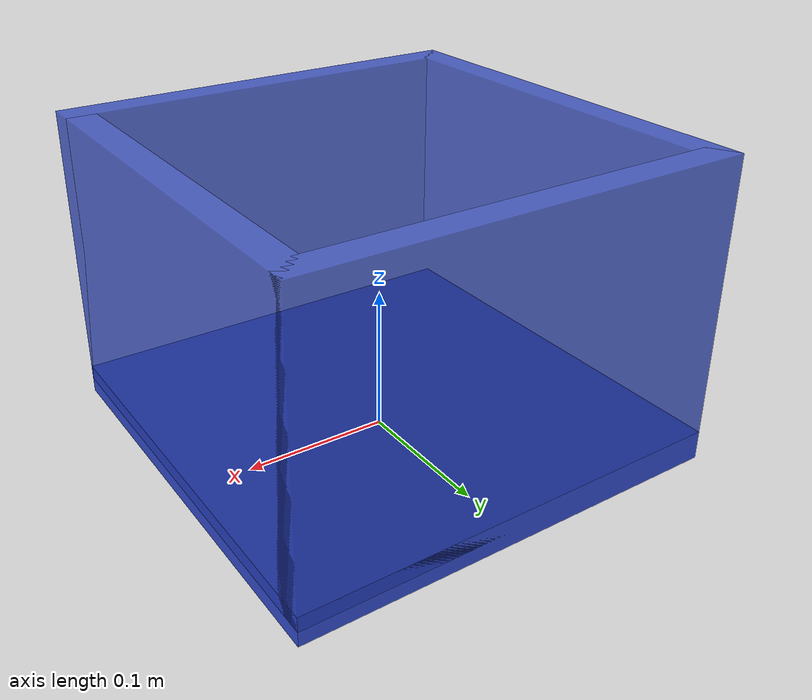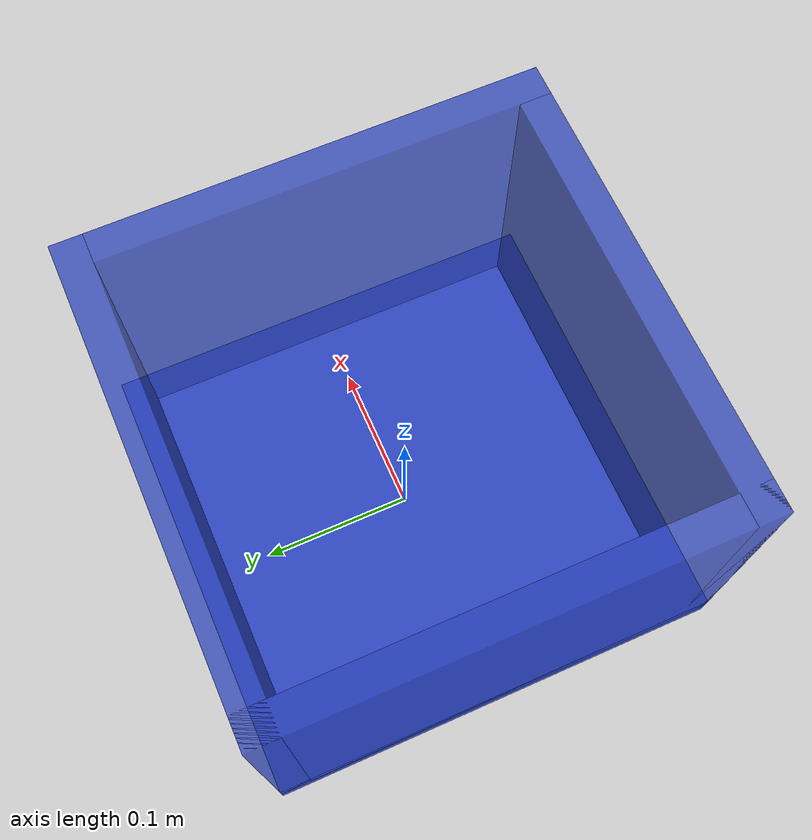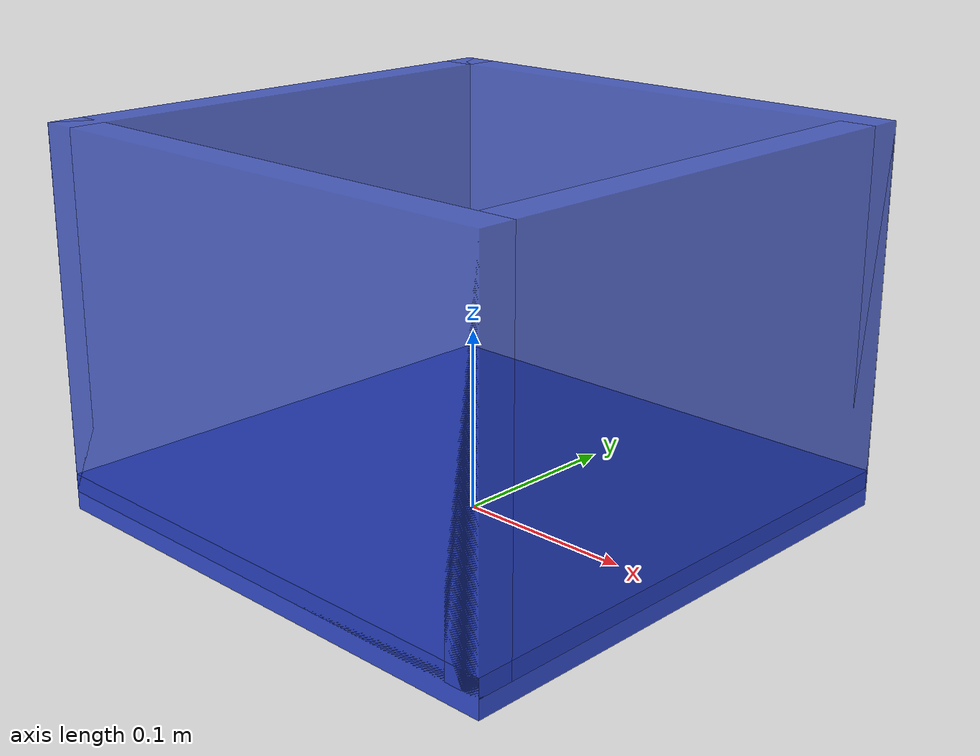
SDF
<?xml version="1.0"?>
<sdf version="1.7">
  <model name="bin_blue">
    <pose>0 0 0 0 0 0</pose>
    <link name="bin_link">
      <inertial>
        <mass>5</mass>
        <inertia>
          <ixx>0.1</ixx>
          <ixy>0.0</ixy>
          <ixz>0.0</ixz>
          <iyy>0.1</iyy>
          <iyz>0.0</iyz>
          <izz>0.1</izz>
        </inertia>
      </inertial>
      <!-- Bottom of bin -->
      <collision name="bottom_collision">
        <pose>0 0 0.01 0 0 0</pose>
        <geometry>
          <box>
            <size>0.3 0.3 0.02</size>
          </box>
        </geometry>
      </collision>
      <visual name="bottom_visual">
        <pose>0 0 0.01 0 0 0</pose>
        <geometry>
          <box>
            <size>0.3 0.3 0.02</size>
          </box>
        </geometry>
        <material>
          <diffuse>0.2 0.3 0.8 1.0</diffuse>
        </material>
      </visual>
      <!-- Front wall -->
      <collision name="front_collision">
        <pose>0 -0.14 0.11 0 0 0</pose>
        <geometry>
          <box>
            <size>0.3 0.02 0.20</size>
          </box>
        </geometry>
      </collision>
      <visual name="front_visual">
        <pose>0 -0.14 0.11 0 0 0</pose>
        <geometry>
          <box>
            <size>0.3 0.02 0.20</size>
          </box>
        </geometry>
        <material>
          <diffuse>0.2 0.3 0.8 0.8</diffuse>
        </material>
      </visual>
      <!-- Back wall -->
      <collision name="back_collision">
        <pose>0 0.14 0.11 0 0 0</pose>
        <geometry>
          <box>
            <size>0.3 0.02 0.20</size>
          </box>
        </geometry>
      </collision>
      <visual name="back_visual">
        <pose>0 0.14 0.11 0 0 0</pose>
        <geometry>
          <box>
            <size>0.3 0.02 0.20</size>
          </box>
        </geometry>
        <material>
          <diffuse>0.2 0.3 0.8 0.8</diffuse>
        </material>
      </visual>
      <!-- Left wall -->
      <collision name="left_collision">
        <pose>-0.14 0 0.11 0 0 0</pose>
        <geometry>
          <box>
            <size>0.02 0.3 0.20</size>
          </box>
        </geometry>
      </collision>
      <visual name="left_visual">
        <pose>-0.14 0 0.11 0 0 0</pose>
        <geometry>
          <box>
            <size>0.02 0.3 0.20</size>
          </box>
        </geometry>
        <material>
          <diffuse>0.2 0.3 0.8 0.8</diffuse>
        </material>
      </visual>
      <!-- Right wall -->
      <collision name="right_collision">
        <pose>0.14 0 0.11 0 0 0</pose>
        <geometry>
          <box>
            <size>0.02 0.3 0.20</size>
          </box>
        </geometry>
      </collision>
      <visual name="right_visual">
        <pose>0.14 0 0.11 0 0 0</pose>
        <geometry>
          <box>
            <size>0.02 0.3 0.20</size>
          </box>
        </geometry>
        <material>
          <diffuse>0.2 0.3 0.8 0.8</diffuse>
        </material>
      </visual>
    </link>
  </model>
</sdf>
